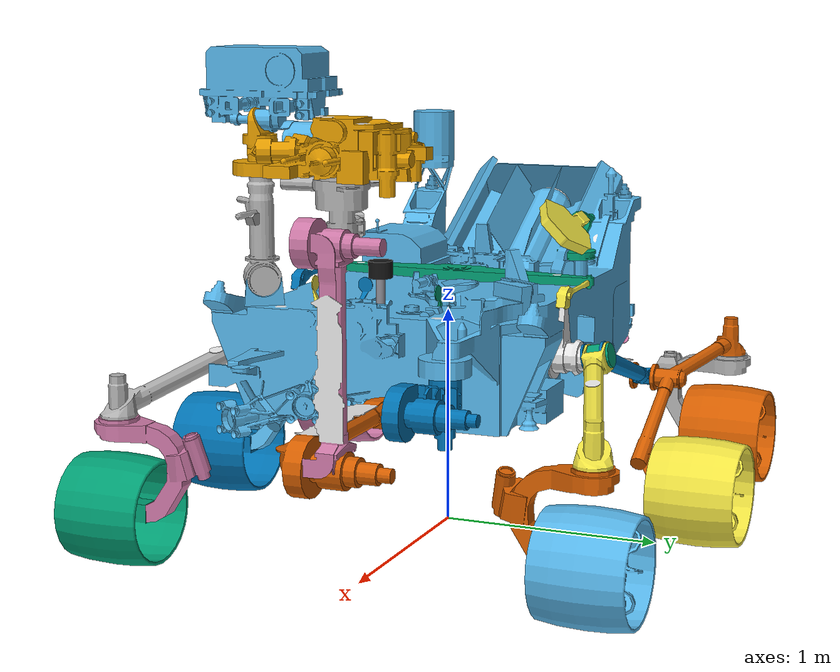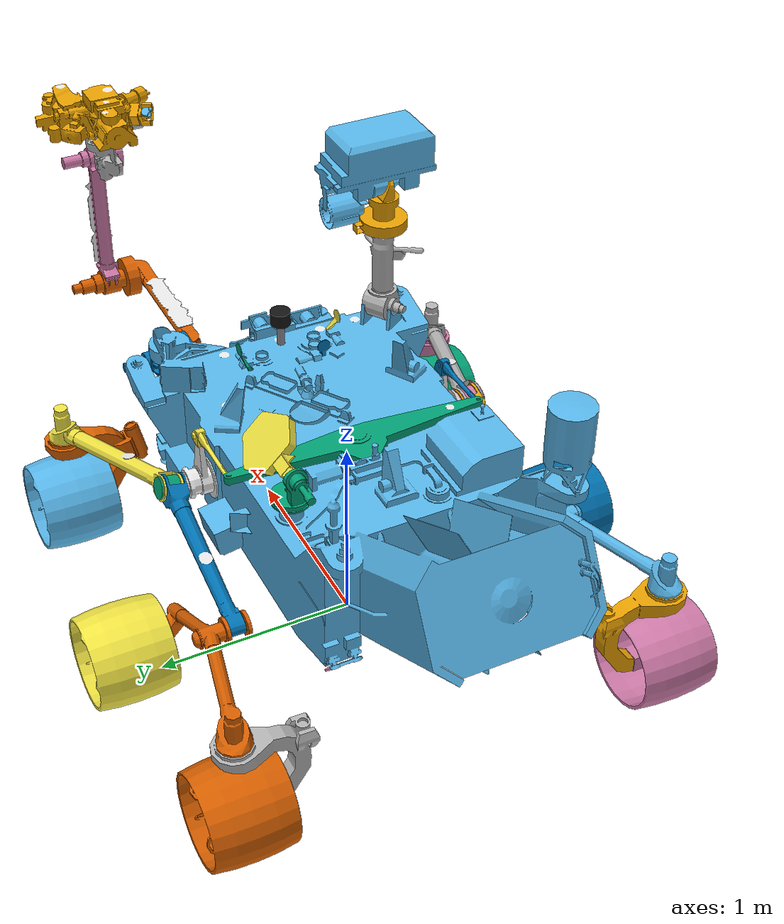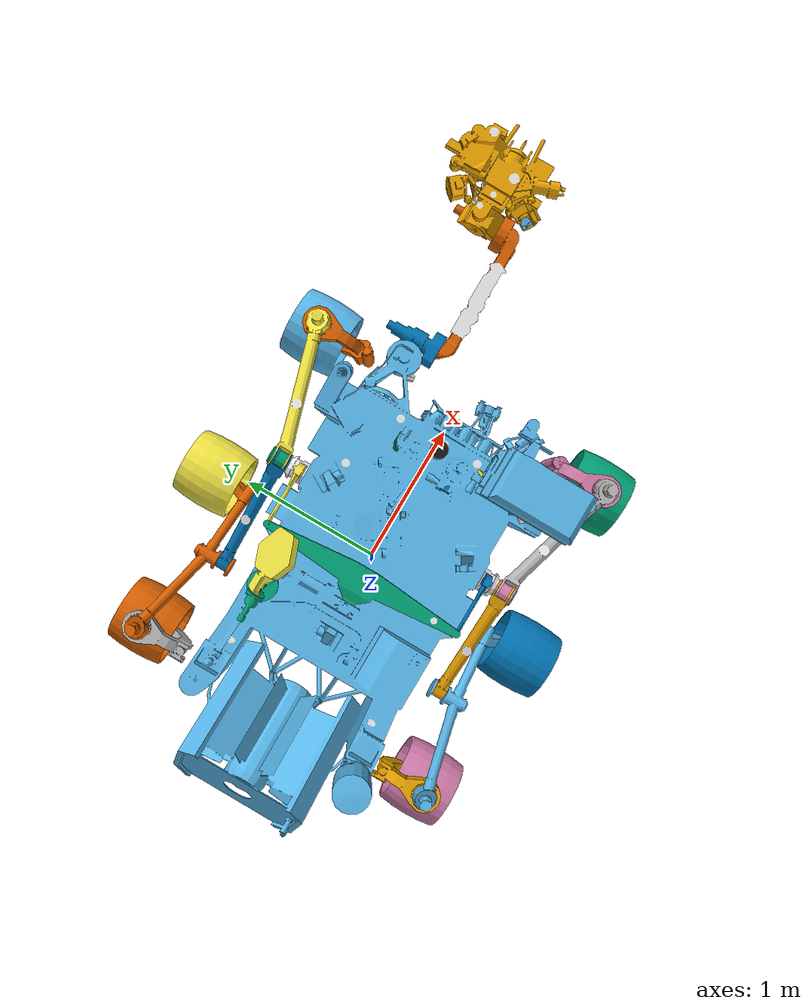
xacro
<?xml version="1.0"?>
<robot name="curiosity" xmlns:xacro="http://www.ros.org/wiki/xacro">
  <xacro:arg name="use_gazebo" default="true"/>
  <xacro:arg name="use_lidar" default="true"/>
  <xacro:arg name="use_cameras" default="true"/>
  <xacro:arg name="lidar_x" default="0.755"/>
  <xacro:arg name="lidar_y" default="0.0"/>
  <xacro:arg name="lidar_z" default="0.266"/>
  <xacro:arg name="wheel_collision" default="sphere"/>
  <xacro:arg name="differential_coupling" default="true"/>

  <xacro:include filename="curiosity.xacro"/>
  <xacro:include filename="sensors.xacro"/>

  <xacro:curiosity_body wheel_collision="$(arg wheel_collision)"
                        differential_coupling="$(arg differential_coupling)"/>
  <xacro:curiosity_sensors use_lidar="$(arg use_lidar)" use_cameras="$(arg use_cameras)"
                           lidar_x="$(arg lidar_x)" lidar_y="$(arg lidar_y)" lidar_z="$(arg lidar_z)"/>

  <xacro:if value="$(arg use_gazebo)">
    <xacro:include filename="gazebo.xacro"/>
    <xacro:curiosity_gazebo controllers="$(find curiosity_description)/config/controllers.yaml"/>
  </xacro:if>
</robot>

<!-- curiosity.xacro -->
<robot xmlns:xacro="http://www.ros.org/wiki/xacro">

  <xacro:property name="mesh_dir" value="package://curiosity_description/meshes"/>
  <xacro:property name="wheel_radius" value="0.2426"/>
  <xacro:property name="wheel_width" value="0.3947"/>

  <!--  Building blocks                                                 -->

  <!-- inertia: "ixx iyy izz ixy ixz iyz" -->
  <xacro:macro name="inertial" params="mass com inertia">
    <xacro:property name="i" value="${inertia.split()}"/>
    <inertial>
      <origin xyz="${com}" rpy="0 0 0"/>
      <mass value="${mass}"/>
      <inertia ixx="${i[0]}" iyy="${i[1]}" izz="${i[2]}" ixy="${i[3]}" ixz="${i[4]}" iyz="${i[5]}"/>
    </inertial>
  </xacro:macro>

  <!-- rigid part: textured visual + convex-hull collision, both named after the link -->
  <xacro:macro name="part" params="name mass com inertia">
    <link name="${name}">
      <visual><geometry><mesh filename="${mesh_dir}/visual/${name}.dae"/></geometry></visual>
      <collision><geometry><mesh filename="${mesh_dir}/collision/${name}.stl"/></geometry></collision>
      <xacro:inertial mass="${mass}" com="${com}" inertia="${inertia}"/>
    </link>
  </xacro:macro>

  <!-- wheel: textured visual; collision = sphere (default: one clean contact point under the
       hub, exact steering/turning in physics engines), cylinder, or the convex-hull mesh -->
  <xacro:macro name="wheel" params="name mass com inertia collision">
    <link name="${name}">
      <visual><geometry><mesh filename="${mesh_dir}/visual/${name}.dae"/></geometry></visual>
      <collision>
        <xacro:if value="${collision == 'sphere'}">
          <geometry><sphere radius="${wheel_radius}"/></geometry>
        </xacro:if>
        <xacro:if value="${collision == 'cylinder'}">
          <origin xyz="0 0 0" rpy="${pi/2} 0 0"/>
          <geometry><cylinder radius="${wheel_radius}" length="${wheel_width}"/></geometry>
        </xacro:if>
        <xacro:if value="${collision == 'mesh'}">
          <geometry><mesh filename="${mesh_dir}/collision/${name}.stl"/></geometry>
        </xacro:if>
      </collision>
      <xacro:inertial mass="${mass}" com="${com}" inertia="${inertia}"/>
    </link>
  </xacro:macro>

  <xacro:macro name="joint" params="name type parent child xyz axis lower:=0 upper:=0 effort velocity">
    <joint name="${name}" type="${type}">
      <parent link="${parent}"/>
      <child link="${child}"/>
      <origin xyz="${xyz}" rpy="0 0 0"/>
      <axis xyz="${axis}"/>
      <xacro:if value="${type == 'continuous'}">
        <limit effort="${effort}" velocity="${velocity}"/>
      </xacro:if>
      <xacro:unless value="${type == 'continuous'}">
        <limit lower="${lower}" upper="${upper}" effort="${effort}" velocity="${velocity}"/>
      </xacro:unless>
      <dynamics damping="0.5" friction="0.1"/>
    </joint>
  </xacro:macro>

  <xacro:macro name="curiosity_body" params="wheel_collision:=sphere differential_coupling:=true">

    <link name="base_footprint"/>
    <joint name="base_footprint_joint" type="fixed">
      <parent link="base_footprint"/>
      <child link="base_link"/>
      <origin xyz="0 0 0.877654" rpy="0 0 0"/>
    </joint>

    <!-- Chassis                                                      -->
    <xacro:part name="base_link" mass="573.5" com="-0.1972 -0.0223 0.222"
        inertia="119.572 322.918 364.757 -3.67863 40.2716 4.88312"/>

    <!-- Suspension: rocker-bogie with differential                   -->
    <xacro:part name="rocker_left_link" mass="5" com="-0.0003 0.0586 0.0426"
        inertia="0.0469167 0.0324541 0.0307539 2.09967e-05 1.51454e-07 0.00127928"/>
    <xacro:part name="rocker_front_left_link" mass="10" com="0.4754 0.1435 -0.0857"
        inertia="0.120536 0.78581 0.814948 -0.211916 0.13395 0.0392203"/>
    <xacro:part name="rocker_rear_left_link" mass="10" com="-0.313 -0.0027 -0.1007"
        inertia="0.0702669 0.592054 0.537307 0.00354021 -0.1661 0.00149913"/>
    <xacro:part name="bogie_left_link" mass="15" com="-0.0796 -0.0261 -0.085"
        inertia="0.348624 1.45657 1.31871 0.112305 0.431003 0.0131645"/>
    <xacro:part name="rocker_right_link" mass="5" com="-0.0002 -0.0616 0.0424"
        inertia="0.0469053 0.0324018 0.0307965 -2.52928e-05 4.65738e-05 -0.00124395"/>
    <xacro:part name="rocker_front_right_link" mass="10" com="0.4754 -0.1435 -0.0857"
        inertia="0.120537 0.78581 0.814948 0.211916 0.13395 -0.0392204"/>
    <xacro:part name="rocker_rear_right_link" mass="10" com="-0.313 0.0027 -0.1007"
        inertia="0.0702669 0.592054 0.537308 -0.00354021 -0.166099 -0.00149913"/>
    <xacro:part name="bogie_right_link" mass="15" com="-0.0796 0.0261 -0.085"
        inertia="0.348625 1.45657 1.31871 -0.112305 0.431004 -0.0131644"/>
    <xacro:part name="differential_link" mass="5" com="-0.0271 -0.0003 -0.0256"
        inertia="0.472475 0.0147764 0.48488 0.00340001 2.88547e-05 0.000225944"/>
    <xacro:part name="diff_rod_left_link" mass="1" com="-0.1022 -0.032 -0.0079"
        inertia="0.000596434 0.00933523 0.00907715 -4.18972e-05 0.000394118 -2.78979e-06"/>
    <xacro:part name="diff_rod_right_link" mass="1" com="-0.1023 0.0318 -0.0071"
        inertia="0.00060283 0.00933537 0.00907063 2.32919e-05 0.000459022 3.69473e-06"/>

    <!-- passive; drives the differential -->
    <xacro:joint name="rocker_left_joint" type="revolute" parent="base_link" child="rocker_left_link"
        xyz="0.249084 0.641 0" axis="0 1 0" lower="-0.4" upper="0.4" effort="2000" velocity="1"/>
    <!-- stowage hinge, 0 = deployed -->
    <xacro:joint name="rocker_front_fold_left_joint" type="revolute" parent="rocker_left_link" child="rocker_front_left_link"
        xyz="-0.002503 0.153907 0.006756" axis="0 0.980785 0.19509" lower="-0.9" upper="0.05" effort="2000" velocity="0.3"/>
    <!-- stowage hinge, 0 = deployed -->
    <xacro:joint name="rocker_rear_fold_left_joint" type="revolute" parent="rocker_left_link" child="rocker_rear_left_link"
        xyz="0 0.153362 0.009493" axis="0 0.980785 0.19509" lower="-0.05" upper="0.95" effort="2000" velocity="0.3"/>
    <xacro:joint name="bogie_left_joint" type="revolute" parent="rocker_rear_left_link" child="bogie_left_link"
        xyz="-0.754004 0.192854 -0.241563" axis="0 1 0" lower="-0.8" upper="0.6" effort="2000" velocity="1"/>
    <!-- differential: right = -left -->
    <joint name="rocker_right_joint" type="revolute">
      <parent link="base_link"/>
      <child link="rocker_right_link"/>
      <origin xyz="0.249084 -0.638 -0.00004" rpy="0 0 0"/>
      <axis xyz="0 1 0"/>
      <limit lower="-0.4" upper="0.4" effort="2000" velocity="1"/>
      <dynamics damping="0.5" friction="0.1"/>
      <xacro:if value="${differential_coupling}">
        <mimic joint="rocker_left_joint" multiplier="-1" offset="0"/>
      </xacro:if>
    </joint>
    <!-- stowage hinge, 0 = deployed -->
    <xacro:joint name="rocker_front_fold_right_joint" type="revolute" parent="rocker_right_link" child="rocker_front_right_link"
        xyz="0 -0.161163 0.009533" axis="0 0.980785 -0.19509" lower="-0.9" upper="0.05" effort="2000" velocity="0.3"/>
    <!-- stowage hinge, 0 = deployed -->
    <xacro:joint name="rocker_rear_fold_right_joint" type="revolute" parent="rocker_right_link" child="rocker_rear_right_link"
        xyz="0 -0.161163 0.009533" axis="0 0.980785 -0.19509" lower="-0.05" upper="0.95" effort="2000" velocity="0.3"/>
    <xacro:joint name="bogie_right_joint" type="revolute" parent="rocker_rear_right_link" child="bogie_right_link"
        xyz="-0.754004 -0.192857 -0.241561" axis="0 1 0" lower="-0.8" upper="0.6" effort="2000" velocity="1"/>
    <!-- deck bar follows the left rocker -->
    <joint name="differential_joint" type="revolute">
      <parent link="base_link"/>
      <child link="differential_link"/>
      <origin xyz="-0.106916 0.000378 0.299066" rpy="0 0 0"/>
      <axis xyz="0 0 1"/>
      <limit lower="-0.4" upper="0.4" effort="2000" velocity="1"/>
      <dynamics damping="0.5" friction="0.1"/>
      <mimic joint="rocker_left_joint" multiplier="-0.419101" offset="0"/>
    </joint>
    <!-- rod slides with the rocker crank -->
    <joint name="diff_rod_left_joint" type="prismatic">
      <parent link="base_link"/>
      <child link="diff_rod_left_link"/>
      <origin xyz="0.249098 0.671804 0.268539" rpy="0 0 0"/>
      <axis xyz="1 0 0"/>
      <limit lower="-0.12" upper="0.12" effort="2000" velocity="0.5"/>
      <dynamics damping="0.5" friction="0.1"/>
      <mimic joint="rocker_left_joint" multiplier="0.268539" offset="0"/>
    </joint>
    <joint name="diff_rod_right_joint" type="prismatic">
      <parent link="base_link"/>
      <child link="diff_rod_right_link"/>
      <origin xyz="0.248903 -0.671318 0.267151" rpy="0 0 0"/>
      <axis xyz="1 0 0"/>
      <limit lower="-0.12" upper="0.12" effort="2000" velocity="0.5"/>
      <dynamics damping="0.5" friction="0.1"/>
      <mimic joint="rocker_left_joint" multiplier="-0.268539" offset="0"/>
    </joint>

    <!-- Steering and wheels                                          -->
    <xacro:part name="steer_front_left_link" mass="8" com="-0.0022 -0.1563 -0.3992"
        inertia="0.193317 0.0987763 0.125525 -0.00195023 -0.000798712 -0.0274657"/>
    <xacro:part name="steer_front_right_link" mass="8" com="-0.0022 0.1561 -0.3964"
        inertia="0.193317 0.0987762 0.125525 0.00195019 -0.000798667 0.0274655"/>
    <xacro:part name="steer_rear_left_link" mass="8" com="-0.0003 -0.1383 -0.1491"
        inertia="0.178143 0.103485 0.105154 -0.000287112 0.000221174 -0.0199332"/>
    <xacro:part name="steer_rear_right_link" mass="8" com="-0.0006 0.1383 -0.1491"
        inertia="0.178144 0.103484 0.105153 0.000338393 -7.41681e-06 0.0199334"/>
    <xacro:wheel name="wheel_front_left_link" mass="12" com="0 0 0"
        inertia="0.316153 0.332583 0.316153 5.28687e-08 -1.03827e-09 -2.02801e-09" collision="${wheel_collision}"/>
    <xacro:wheel name="wheel_front_right_link" mass="12" com="0 0 0"
        inertia="0.316153 0.332583 0.316153 3.91395e-08 6.62431e-10 3.90527e-09" collision="${wheel_collision}"/>
    <xacro:wheel name="wheel_middle_left_link" mass="12" com="0 0 0"
        inertia="0.316153 0.332583 0.316153 5.16823e-08 -7.01612e-10 -2.5389e-09" collision="${wheel_collision}"/>
    <xacro:wheel name="wheel_middle_right_link" mass="12" com="0 0 0"
        inertia="0.316153 0.332583 0.316153 4.90457e-08 6.93734e-10 1.12758e-09" collision="${wheel_collision}"/>
    <xacro:wheel name="wheel_rear_left_link" mass="12" com="0 0 0"
        inertia="0.316153 0.332583 0.316153 4.4038e-08 -3.72571e-10 -6.52527e-10" collision="${wheel_collision}"/>
    <xacro:wheel name="wheel_rear_right_link" mass="12" com="0 0 0"
        inertia="0.316153 0.332583 0.316153 7.17683e-08 7.92219e-10 8.21016e-10" collision="${wheel_collision}"/>

    <xacro:joint name="steer_front_left_joint" type="revolute" parent="rocker_front_left_link" child="steer_front_left_link"
        xyz="0.881002 0.263096 -0.002167" axis="0 0 1" lower="-1.57" upper="1.57" effort="500" velocity="1"/>
    <xacro:joint name="steer_front_right_joint" type="revolute" parent="rocker_front_right_link" child="steer_front_right_link"
        xyz="0.881 -0.262838 -0.004898" axis="0 0 1" lower="-1.57" upper="1.57" effort="500" velocity="1"/>
    <xacro:joint name="steer_rear_left_joint" type="revolute" parent="bogie_left_link" child="steer_rear_left_link"
        xyz="-0.623996 0.070483 -0.0006" axis="0 0 1" lower="-1.57" upper="1.57" effort="500" velocity="1"/>
    <xacro:joint name="steer_rear_right_joint" type="revolute" parent="bogie_right_link" child="steer_rear_right_link"
        xyz="-0.623997 -0.070481 -0.000603" axis="0 0 1" lower="-1.57" upper="1.57" effort="500" velocity="1"/>
    <xacro:joint name="wheel_front_left_joint" type="continuous" parent="steer_front_left_link" child="wheel_front_left_link"
        xyz="0.000089 0.000633 -0.639597" axis="0 1 0" effort="500" velocity="3"/>
    <xacro:joint name="wheel_front_right_joint" type="continuous" parent="steer_front_right_link" child="wheel_front_right_link"
        xyz="-0.00009 -0.000891 -0.636866" axis="0 1 0" effort="500" velocity="3"/>
    <xacro:joint name="wheel_middle_left_joint" type="continuous" parent="bogie_left_link" child="wheel_middle_left_link"
        xyz="0.451004 0.201636 -0.400009" axis="0 1 0" effort="500" velocity="3"/>
    <xacro:joint name="wheel_middle_right_joint" type="continuous" parent="bogie_right_link" child="wheel_middle_right_link"
        xyz="0.451004 -0.201634 -0.400012" axis="0 1 0" effort="500" velocity="3"/>
    <xacro:joint name="wheel_rear_left_joint" type="continuous" parent="steer_rear_left_link" child="wheel_rear_left_link"
        xyz="0.001244 0.000487 -0.399489" axis="0 1 0" effort="500" velocity="3"/>
    <xacro:joint name="wheel_rear_right_joint" type="continuous" parent="steer_rear_right_link" child="wheel_rear_right_link"
        xyz="-0.001243 -0.000487 -0.399489" axis="0 1 0" effort="500" velocity="3"/>

    <!-- Remote sensing mast                                          -->
    <xacro:part name="mast_column_link" mass="8" com="0.0068 -0.0213 0.1805"
        inertia="0.155997 0.167178 0.0525231 -0.00924956 -0.00454186 0.00840738"/>
    <xacro:part name="mast_azimuth_link" mass="4" com="0 0.0047 0.0625"
        inertia="0.0285428 0.0265996 0.0229363 -1.60432e-08 1.89958e-07 0.0014148"/>
    <xacro:part name="mast_head_link" mass="15" com="-0.0033 0.0416 0.1124"
        inertia="0.495034 0.269291 0.39632 0.00288283 0.012065 0.0497628"/>

    <!-- 1.5708 = folded onto the deck -->
    <xacro:joint name="mast_deploy_joint" type="revolute" parent="base_link" child="mast_column_link"
        xyz="0.750593 -0.558212 0.35" axis="-0.83867 -0.544639 0" lower="-0.05" upper="1.5708" effort="200" velocity="0.5"/>
    <xacro:joint name="mast_azimuth_joint" type="revolute" parent="mast_column_link" child="mast_azimuth_link"
        xyz="-0.001527 -0.000838 0.474769" axis="0 0 1" lower="-3.14" upper="3.14" effort="100" velocity="1"/>
    <xacro:joint name="mast_elevation_joint" type="revolute" parent="mast_azimuth_link" child="mast_head_link"
        xyz="-0.000003 0.020692 0.202123" axis="0 1 0" lower="-1.57" upper="1.57" effort="100" velocity="1"/>

    <!-- High-gain antenna                                            -->
    <xacro:part name="hga_gimbal_link" mass="5" com="-0.0485 0 0.0585"
        inertia="0.0212399 0.0349897 0.027524 -7.36454e-06 0.00837725 8.45776e-06"/>
    <xacro:part name="hga_dish_link" mass="10" com="0.2462 0.0083 0.0081"
        inertia="0.0432591 0.113924 0.113924 0.000323157 0.000323407 0.0179832"/>

    <xacro:joint name="hga_azimuth_joint" type="revolute" parent="base_link" child="hga_gimbal_link"
        xyz="-0.42444 0.474965 0.355316" axis="0 0 1" lower="-3.14" upper="3.14" effort="100" velocity="1"/>
    <xacro:joint name="hga_elevation_joint" type="revolute" parent="hga_gimbal_link" child="hga_dish_link"
        xyz="-0.086411 -0.000101 0.133184" axis="-1 -0.000001 0.000001" lower="-1.57" upper="1.57" effort="100" velocity="1"/>

    <!-- Robotic arm (5 DOF) and turret                               -->
    <xacro:part name="arm_shoulder_link" mass="10" com="0.0879 -0.02 -0.1711"
        inertia="0.106696 0.108075 0.124131 0.00274447 -0.00203086 -0.00124628"/>
    <xacro:part name="arm_upper_link" mass="20" com="0.5563 -0.0858 0.0072"
        inertia="0.22391 1.11543 1.26512 -0.163375 0.0176116 0.00636217"/>
    <xacro:part name="arm_lower_link" mass="18" com="0.0036 -0.0724 0.4724"
        inertia="1.02582 0.983956 0.113782 0.00322392 0.0184466 -0.0120087"/>
    <xacro:part name="arm_wrist_link" mass="8" com="-0.1304 0.0498 0.1078"
        inertia="0.0731296 0.0695344 0.0689247 -0.00187174 -0.00327343 0.00318245"/>
    <xacro:part name="arm_turret_link" mass="33.9" com="-0.002 0.0227 0.1533"
        inertia="0.750969 0.659789 1.19693 -0.0329422 0.00847943 -0.00170862"/>
    <xacro:part name="mahli_cover_link" mass="0.1" com="0.0072 0.0128 0.0004"
        inertia="2.38363e-05 2.35917e-05 3.42774e-05 -6.68189e-07 -7.807e-06 3.76878e-06"/>

    <!-- azimuth -->
    <xacro:joint name="arm_joint_1" type="revolute" parent="base_link" child="arm_shoulder_link"
        xyz="1.147935 0.4515 0.122645" axis="0 0 1" lower="-1.6" upper="1.6" effort="500" velocity="0.5"/>
    <!-- shoulder -->
    <xacro:joint name="arm_joint_2" type="revolute" parent="arm_shoulder_link" child="arm_upper_link"
        xyz="0.1605 -0.003843 -0.165645" axis="0 1 0" lower="-1.6" upper="1.6" effort="500" velocity="0.5"/>
    <!-- elbow -->
    <xacro:joint name="arm_joint_3" type="revolute" parent="arm_upper_link" child="arm_lower_link"
        xyz="0.824777 0.070499 0.000582" axis="0 1 0" lower="-2.8" upper="2.8" effort="300" velocity="0.5"/>
    <!-- wrist -->
    <xacro:joint name="arm_joint_4" type="revolute" parent="arm_lower_link" child="arm_wrist_link"
        xyz="-0.001267 -0.159256 0.782666" axis="0 1 0" lower="-2.8" upper="2.8" effort="200" velocity="0.5"/>
    <!-- turret -->
    <xacro:joint name="arm_joint_5" type="revolute" parent="arm_wrist_link" child="arm_turret_link"
        xyz="-0.101267 0.074298 0.143979" axis="0 0 1" lower="-3.14" upper="3.14" effort="200" velocity="0.5"/>
    <xacro:joint name="mahli_cover_joint" type="revolute" parent="arm_turret_link" child="mahli_cover_link"
        xyz="-0.136027 -0.226112 0.16812" axis="0.731237 -0.464894 0.499165" lower="-0.05" upper="4.76" effort="5" velocity="2"/>

    <!-- Covers (open at q = 0)                                       -->
    <xacro:part name="deck_cover_1_link" mass="0.5" com="0.0306 0.0165 0.0549"
        inertia="0.000450567 0.000695014 0.000340838 -7.92536e-05 -0.000254673 -0.000105629"/>
    <xacro:part name="deck_cover_2_link" mass="0.5" com="-0.0151 -0.0162 0.0634"
        inertia="0.000564207 0.000652013 0.000194699 -4.60855e-05 0.000151451 0.000127784"/>
    <xacro:part name="deck_cover_3_link" mass="0.5" com="-0.0174 -0.0001 0.051"
        inertia="0.000422143 0.000378737 0.000144018 1.04805e-05 9.48981e-05 -2.70113e-05"/>
    <xacro:part name="front_hazcam_cover_link" mass="0.5" com="-0.0158 0.137 -0.0126"
        inertia="0.00304856 0.000216214 0.00309376 -1.50995e-09 -9.54991e-05 -6.8727e-10"/>
    <xacro:part name="rear_hazcam_cover_link" mass="0.5" com="0.0117 -0.501 -0.0159"
        inertia="0.0534499 0.000218488 0.0533856 7.3434e-08 9.37276e-05 -7.53261e-09"/>

    <xacro:joint name="deck_cover_1_joint" type="revolute" parent="base_link" child="deck_cover_1_link"
        xyz="0.653388 0.212591 0.23845" axis="-1 0 0" lower="-1.62" upper="0.05" effort="20" velocity="1"/>
    <xacro:joint name="deck_cover_2_joint" type="revolute" parent="base_link" child="deck_cover_2_link"
        xyz="0.778654 -0.276991 0.240232" axis="-1 0 0" lower="-0.05" upper="1.62" effort="20" velocity="1"/>
    <xacro:joint name="deck_cover_3_joint" type="revolute" parent="base_link" child="deck_cover_3_link"
        xyz="0.606487 -0.154599 0.24015" axis="0 1 0" lower="-0.05" upper="1.62" effort="20" velocity="1"/>
    <xacro:joint name="front_hazcam_cover_joint" type="revolute" parent="base_link" child="front_hazcam_cover_link"
        xyz="0.941095 -0.090665 -0.186547" axis="0 1 0" lower="-3.2" upper="0.05" effort="20" velocity="2"/>
    <xacro:joint name="rear_hazcam_cover_joint" type="revolute" parent="base_link" child="rear_hazcam_cover_link"
        xyz="-1.002474 0.501 -0.12737" axis="0 1 0" lower="-0.05" upper="2.95" effort="20" velocity="2"/>

  </xacro:macro>
</robot>

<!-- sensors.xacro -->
<robot xmlns:xacro="http://www.ros.org/wiki/xacro">

  <!-- camera: frames always; a gz camera sensor when gz:=true -->
  <xacro:macro name="camera" params="name parent xyz rpy hfov width:=800 height:=800 rate:=10 gz:=true">
    <link name="${name}_link"/>
    <joint name="${name}_joint" type="fixed">
      <parent link="${parent}"/>
      <child link="${name}_link"/>
      <origin xyz="${xyz}" rpy="${rpy}"/>
    </joint>
    <link name="${name}_optical_frame"/>
    <joint name="${name}_optical_joint" type="fixed">
      <parent link="${name}_link"/>
      <child link="${name}_optical_frame"/>
      <origin xyz="0 0 0" rpy="${-pi/2} 0 ${-pi/2}"/>
    </joint>
    <xacro:if value="${gz}">
      <gazebo reference="${name}_link">
        <sensor name="${name}" type="camera">
          <always_on>true</always_on>
          <update_rate>${rate}</update_rate>
          <topic>${name}/image_raw</topic>
          <gz_frame_id>${name}_optical_frame</gz_frame_id>
          <camera>
            <camera_info_topic>${name}/camera_info</camera_info_topic>
            <horizontal_fov>${hfov}</horizontal_fov>
            <image><width>${width}</width><height>${height}</height><format>R8G8B8</format></image>
            <clip><near>0.05</near><far>200</far></clip>
            <noise><type>gaussian</type><mean>0</mean><stddev>0.005</stddev></noise>
          </camera>
        </sensor>
      </gazebo>
    </xacro:if>
  </xacro:macro>

  <xacro:macro name="curiosity_sensors" params="use_lidar use_cameras lidar_x lidar_y lidar_z">

    <!-- Navigation cameras: stereo pair on the mast, 0.42 m baseline, 45 deg -->
    <xacro:camera name="navcam_left"  parent="mast_head_link" xyz="0.128014 0.232899 0.081525"  rpy="0 0 0" hfov="0.7854" gz="${use_cameras}"/>
    <xacro:camera name="navcam_right" parent="mast_head_link" xyz="0.128016 -0.186413 0.081525" rpy="0 0 0" hfov="0.7854" gz="${use_cameras}"/>

    <!-- Mast cameras: MastCam-34 (left, 15 deg) and MastCam-100 (right, real 5.1 deg;
         0.1 rad = 5.7 deg is the narrowest field of view SDFormat accepts) -->
    <xacro:camera name="mastcam_left"  parent="mast_head_link" xyz="0.128752 0.14227 0.065695"   rpy="0 0 0" hfov="0.2618" height="600" rate="5" gz="${use_cameras}"/>
    <xacro:camera name="mastcam_right" parent="mast_head_link" xyz="0.128752 -0.096604 0.065199" rpy="0 0 0" hfov="0.1"    height="600" rate="5" gz="${use_cameras}"/>

    <!-- Hazard cameras: 120 deg fisheye-class, pitched 45 deg down -->
    <xacro:camera name="front_hazcam"      parent="base_link" xyz="0.973156 0.086741 -0.163985"   rpy="0 0.785398 0"         hfov="2.0944" gz="${use_cameras}"/>
    <xacro:camera name="rear_hazcam_left"  parent="base_link" xyz="-1.034375 0.550879 -0.104816"  rpy="0 0.785398 3.141592"  hfov="2.0944" gz="${use_cameras}"/>
    <xacro:camera name="rear_hazcam_right" parent="base_link" xyz="-1.034375 -0.550879 -0.104817" rpy="0 0.785252 -3.141593" hfov="2.0944" gz="${use_cameras}"/>

    <!-- Descent imager (looks down) and arm hand-lens imager: frames only -->
    <xacro:camera name="mardi" parent="base_link"       xyz="0.708755 0.647786 -0.200477"  rpy="-0.000001 1.570796 0"     hfov="1.2217" gz="false"/>
    <xacro:camera name="mahli" parent="arm_turret_link" xyz="-0.123674 -0.224965 0.151332" rpy="0.522943 0 -2.145719" hfov="0.5236" gz="false"/>

    <xacro:camera name="depth_camera" parent="mast_head_link" xyz="0.15 0.023 0.03" rpy="0 0.35 0" hfov="1.2" gz="false"/>
    <gazebo reference="depth_camera_link">
      <sensor name="depth_camera" type="rgbd_camera">
        <always_on>true</always_on>
        <update_rate>10</update_rate>
        <topic>depth_camera</topic>
        <gz_frame_id>depth_camera_optical_frame</gz_frame_id>
        <camera>
          <horizontal_fov>1.2</horizontal_fov>
          <image><width>640</width><height>480</height><format>R8G8B8</format></image>
          <clip><near>0.1</near><far>20</far></clip>
          <depth_camera><clip><near>0.1</near><far>20</far></clip></depth_camera>
        </camera>
      </sensor>
      <!-- gz publishes depth point clouds in the x-forward camera frame, so the cloud comes
           from this second, lighter depth sensor labelled depth_camera_link -->
      <sensor name="depth_camera_points" type="depth_camera">
        <always_on>true</always_on>
        <update_rate>10</update_rate>
        <topic>depth_camera_points</topic>
        <gz_frame_id>depth_camera_link</gz_frame_id>
        <camera>
          <horizontal_fov>1.2</horizontal_fov>
          <image><width>320</width><height>240</height><format>R_FLOAT32</format></image>
          <clip><near>0.1</near><far>20</far></clip>
        </camera>
      </sensor>
    </gazebo>

    <!-- IMU at base_link -->
    <link name="imu_link"/>
    <joint name="imu_joint" type="fixed">
      <parent link="base_link"/>
      <child link="imu_link"/>
      <origin xyz="0 0 0" rpy="0 0 0"/>
    </joint>
    <gazebo reference="imu_link">
      <sensor name="imu" type="imu">
        <always_on>true</always_on>
        <update_rate>100</update_rate>
        <topic>imu</topic>
        <gz_frame_id>imu_link</gz_frame_id>
      </sensor>
    </gazebo>

    <!-- Optional 3D lidar on a 12 cm post (Curiosity never flew one; for SLAM / mapping).
         16 beams, +-15 deg, 360 deg, 0.3-40 m, 10 Hz. -->
    <xacro:if value="${use_lidar}">
      <link name="lidar_post_link">
        <visual>
          <origin xyz="0 0 0.06"/>
          <geometry><cylinder radius="0.02" length="0.12"/></geometry>
          <material name="lidar_grey"><color rgba="0.55 0.55 0.58 1"/></material>
        </visual>
        <collision>
          <origin xyz="0 0 0.06"/>
          <geometry><cylinder radius="0.02" length="0.12"/></geometry>
        </collision>
        <inertial>
          <origin xyz="0 0 0.06"/>
          <mass value="0.3"/>
          <inertia ixx="0.0004" iyy="0.0004" izz="0.00006" ixy="0" ixz="0" iyz="0"/>
        </inertial>
      </link>
      <joint name="lidar_post_joint" type="fixed">
        <parent link="base_link"/>
        <child link="lidar_post_link"/>
        <origin xyz="${lidar_x} ${lidar_y} ${lidar_z}" rpy="0 0 0"/>
      </joint>
      <link name="lidar_link">
        <visual>
          <geometry><cylinder radius="0.0515" length="0.0717"/></geometry>
          <material name="lidar_black"><color rgba="0.08 0.08 0.08 1"/></material>
        </visual>
        <collision><geometry><cylinder radius="0.0515" length="0.0717"/></geometry></collision>
        <inertial>
          <mass value="0.83"/>
          <inertia ixx="0.0009" iyy="0.0009" izz="0.0011" ixy="0" ixz="0" iyz="0"/>
        </inertial>
      </link>
      <joint name="lidar_joint" type="fixed">
        <parent link="lidar_post_link"/>
        <child link="lidar_link"/>
        <origin xyz="0 0 0.15585" rpy="0 0 0"/>
      </joint>
      <gazebo reference="lidar_link">
        <sensor name="lidar" type="gpu_lidar">
          <always_on>true</always_on>
          <update_rate>10</update_rate>
          <topic>lidar</topic>
          <gz_frame_id>lidar_link</gz_frame_id>
          <lidar>
            <scan>
              <horizontal><samples>900</samples><min_angle>${-pi}</min_angle><max_angle>${pi}</max_angle></horizontal>
              <vertical><samples>16</samples><min_angle>-0.2618</min_angle><max_angle>0.2618</max_angle></vertical>
            </scan>
            <range><min>0.3</min><max>40</max><resolution>0.01</resolution></range>
            <noise><type>gaussian</type><mean>0</mean><stddev>0.01</stddev></noise>
          </lidar>
        </sensor>
      </gazebo>
    </xacro:if>

  </xacro:macro>
</robot>
